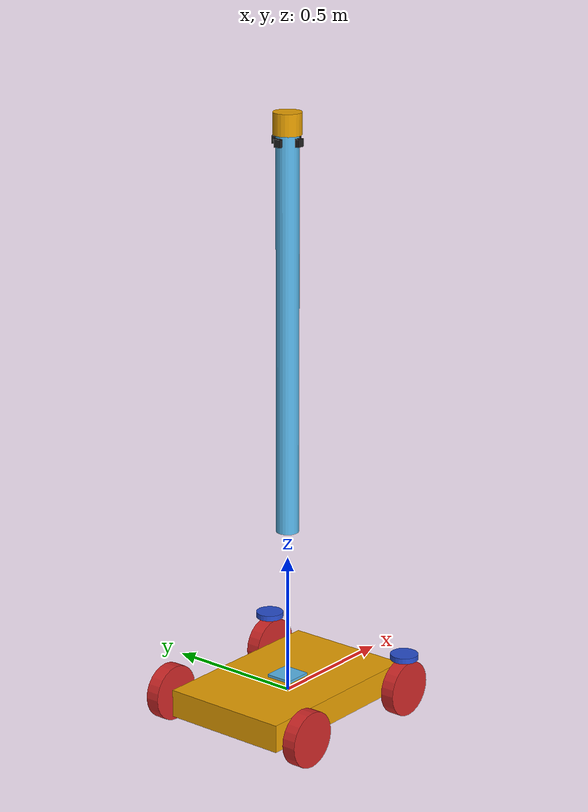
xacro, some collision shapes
<?xml version="1.0"?>
<robot name="mobile_base" xmlns:xacro="http://wiki.ros.org/xacro">
    <!-- Include xacro for inertials, materials and wheels -->
    <xacro:include filename="$(find mobile_base)/urdf/wheel/wheel.xacro" />
    <xacro:include filename="$(find mobile_base)/urdf/hesai_lidar/pandar_XT32M2X.urdf.xacro" />
    <xacro:include filename="$(find mobile_base)/urdf/see3cam/see3cam.urdf.xacro" />

    <!-- Required arg for melodic and kinetic... -->
    <xacro:arg name="namespace" default="/mobile_base" />
    <xacro:property name="namespace" value="$(arg namespace)" scope="global" />

    <!-- Load ros_control plugin using the steer_bot_hardware_gazebo
        implementation of the hardware_interface::RobotHW -->

    <xacro:macro name="box_inertia" params="m w h d">
        <inertial>
            <origin xyz="0 0 0" rpy="${pi/2} 0 ${pi/2}" />
            <mass value="${m}" />
            <inertia ixx="${(m/12) * (h*h + d*d)}" ixy="0.0" ixz="0.0" iyy="${(m/12) * (w*w + d*d)}"
                iyz="0.0" izz="${(m/12) * (w*w + h*h)}" />
        </inertial>
    </xacro:macro>

    <xacro:macro name="cylinder_inertia" params="m r h">
        <inertial>
            <origin xyz="0 0 0" rpy="${pi/2} 0 0" />
            <mass value="${m}" />
            <inertia ixx="${(m/12) * (3*r*r + h*h)}" ixy="0" ixz="0" iyy="${(m/12) * (3*r*r + h*h)}"
                iyz="0" izz="${(m/2) * (r*r)}" />
        </inertial>
    </xacro:macro>

    <xacro:macro name="sphere_inertia" params="m r">
        <inertial>
            <mass value="${m}" />
            <inertia ixx="${(2/5) * m * (r*r)}" ixy="0.0" ixz="0.0" iyy="${(2/5) * m * (r*r)}"
                iyz="0.0" izz="${(2/5) * m * (r*r)}" />
        </inertial>
    </xacro:macro>

    <!-- Math constants -->
    <xacro:property name="deg_to_rad" value="0.01745329251994329577" />

    <!-- Robot base dimensions -->
    <xacro:property name="base_length" value="0.7" />
    <xacro:property name="base_width" value="0.47" />
    <xacro:property name="base_height" value="0.1" />
    <xacro:property name="base_mass" value="5" />

    <!-- Wheel link dimensions -->
    <xacro:property name="wheel_radius" value="0.1" />
    <xacro:property name="wheel_thickness" value="0.05" />
    <xacro:property name="wheel_mass" value="1" />

    <!-- Steering link dimensions -->
    <xacro:property name="steer_radius" value="0.05" />
    <xacro:property name="steer_thickness" value="0.02" />
    <xacro:property name="steer_mass" value="1" />

    <!-- Axle positions -->
    <xacro:property name="axle_offset" value="0.075" />
    <xacro:property name="steer_offset" value="0.02" />

    <!-- Base link -->
    <link name="base_link">
        <visual>
            <origin xyz="-0.275 0 0" rpy="3.14 0 0" />
            <geometry>
                <mesh filename="file:///home/simon/mobile_base_ws/src/mobile_base/urdf/base/meshes/moveo_body.dae" />
            </geometry>
        </visual>
        <collision>
            <origin xyz="0 0 0" rpy="0 0 0" />
            <geometry>
                <box size="${base_length} ${base_width} ${base_height}" />
            </geometry>
        </collision>
        <xacro:solid_cuboid_inertial
            rpy="0 0 0" xyz="0 0 0"
            mass="${base_mass}"
            x="${base_length}" y="${base_width}" z="${base_height}" />
    </link>

    <!-- Base pole -->
    <joint name="base_pole_joint" type="fixed">
        <origin xyz="0 0 1.3" rpy="0 0 0" />
        <parent link="base_link" />
        <child link="base_pole" />
    </joint>

    <link name="base_pole">
        <visual>
            <origin xyz="0.0 0 0" rpy="0.0 0 0" />
            <geometry>
                <cylinder radius="0.04" length="1.4" />
            </geometry>
        </visual>
        <collision>
            <origin xyz="0 0 0" rpy="0 0 0" />
            <geometry>
                <cylinder radius="0.04" length="1.5" />
            </geometry>
        </collision>
    </link>

    <!-- Front steer and rear wheel joints required for ackermann_steering_controller -->

    <!-- Steerable front wheels -->
    <xacro:front_wheel_lr
        name="front_right"
        parent="base"
        reflect="-1"
        wheel_radius="${wheel_radius}"
        wheel_thickness="${wheel_thickness}"
        wheel_mass="${wheel_mass}"
        steer_radius="${steer_radius}"
        steer_thickness="${steer_thickness}"
        steer_mass="${steer_mass}"
        base_length="${base_length}"
        base_width="${base_width}"
        axle_offset="${axle_offset}"
        steer_height="${wheel_radius+steer_offset}">
    </xacro:front_wheel_lr>
    <xacro:front_wheel_lr
        name="front_left"
        parent="base"
        reflect="1"
        wheel_radius="${wheel_radius}"
        wheel_thickness="${wheel_thickness}"
        wheel_mass="${wheel_mass}"
        steer_radius="${steer_radius}"
        steer_thickness="${steer_thickness}"
        steer_mass="${steer_mass}"
        base_length="${base_length}"
        base_width="${base_width}"
        axle_offset="${axle_offset}"
        steer_height="${wheel_radius+steer_offset}">
    </xacro:front_wheel_lr>

    <!-- Rear wheels -->
    <xacro:rear_wheel_lr
        name="rear_right"
        parent="base"
        wheel_radius="${wheel_radius}"
        wheel_thickness="${wheel_thickness}"
        wheel_mass="${wheel_mass}">
        <origin xyz="${-base_length/2+axle_offset} ${-base_width/2-axle_offset} 0"
            rpy="${-90 * deg_to_rad} 0 0" />
    </xacro:rear_wheel_lr>
    <xacro:rear_wheel_lr
        name="rear_left"
        parent="base"
        wheel_radius="${wheel_radius}"
        wheel_thickness="${wheel_thickness}"
        wheel_mass="${wheel_mass}">
        <origin xyz="${-base_length/2+axle_offset} ${+base_width/2+axle_offset} 0"
            rpy="${-90 * deg_to_rad} 0 0" />
    </xacro:rear_wheel_lr>

    <!-- sensors -->

    <!-- Front RGB camera -->
    <xacro:see3cam name="front_camera" parent="base_pole" h_fov="2.0944">
        <origin xyz="0.05 0 0.68"
            rpy="0 0 0" />
    </xacro:see3cam>

    <!-- Rear RGB camera -->
    <xacro:see3cam name="rear_camera" parent="base_pole" h_fov="2.0944">
        <origin xyz="-0.05 0 0.68"
            rpy="0 0 3.14" />
    </xacro:see3cam>

    <!-- Left RGB camera -->
    <xacro:see3cam name="left_camera" parent="base_pole" h_fov="2.0944">
        <origin xyz="0 0.05 0.68"
            rpy="0 0 1.57" />
    </xacro:see3cam>

    <!-- Right RGB camera -->
    <xacro:see3cam name="right_camera" parent="base_pole" h_fov="2.0944">
        <origin xyz="0 -0.05 0.68"
            rpy="0 0 -1.57" />
    </xacro:see3cam>

    <!-- lidar -->
    <xacro:pandar_XT32M2X name="pandar_XT32M2X" parent="base_pole" hz="20" gpu="true">
        <origin xyz="0 0 0.74"
            rpy="0 0 0" />
    </xacro:pandar_XT32M2X>

    <!-- IMU -->
    <link name="imu_link">
        <visual>
            <geometry>
                <box size="0.1 0.1 0.1" />
            </geometry>
        </visual>

        <collision>
            <geometry>
                <box size="0.1 0.1 0.1" />
            </geometry>
        </collision>

        <xacro:box_inertia m="0.001" w="0.1" d="0.1" h="0.1" />
    </link>

    <gazebo reference="imu_link">
        <sensor name="imu_sensor" type="imu">
            <ignition_frame_id>imu_link</ignition_frame_id>
            <plugin filename="ignition-gazebo-imu-system" name="ignition::gazebo::systems::Imu">
            </plugin>

            <topic>imu</topic>
            <always_on>true</always_on>
            <update_rate>100</update_rate>
            <visualize>true</visualize>
            <imu>
                <angular_velocity>
                    <x>
                        <noise type="gaussian">
                            <mean>0.0</mean>
                            <stddev>2e-4</stddev>
                            <bias_mean>0.0000075</bias_mean>
                            <bias_stddev>0.0000008</bias_stddev>
                        </noise>
                    </x>
                    <y>
                        <noise type="gaussian">
                            <mean>0.0</mean>
                            <stddev>2e-4</stddev>
                            <bias_mean>0.0000075</bias_mean>
                            <bias_stddev>0.0000008</bias_stddev>
                        </noise>
                    </y>
                    <z>
                        <noise type="gaussian">
                            <mean>0.0</mean>
                            <stddev>2e-4</stddev>
                            <bias_mean>0.0000075</bias_mean>
                            <bias_stddev>0.0000008</bias_stddev>
                        </noise>
                    </z>
                </angular_velocity>
                <linear_acceleration>
                    <x>
                        <noise type="gaussian">
                            <mean>0.0</mean>
                            <stddev>1.7e-2</stddev>
                            <bias_mean>0.1</bias_mean>
                            <bias_stddev>0.001</bias_stddev>
                        </noise>
                    </x>
                    <y>
                        <noise type="gaussian">
                            <mean>0.0</mean>
                            <stddev>1.7e-2</stddev>
                            <bias_mean>0.1</bias_mean>
                            <bias_stddev>0.001</bias_stddev>
                        </noise>
                    </y>
                    <z>
                        <noise type="gaussian">
                            <mean>0.0</mean>
                            <stddev>1.7e-2</stddev>
                            <bias_mean>0.1</bias_mean>
                            <bias_stddev>0.001</bias_stddev>
                        </noise>
                    </z>
                </linear_acceleration>
            </imu>
        </sensor>
    </gazebo>

    <joint name="imu_joint" type="fixed">
        <parent link="base_link" />
        <child link="imu_link" />
        <origin xyz="0 0 0.01" />
    </joint>

    <!-- controller -->
    <ros2_control name="IgnitionSystem" type="system">
        <hardware>
          <plugin>ign_ros2_control/IgnitionSystem</plugin>
        </hardware>

        <joint name="front_left_steer_joint">
            <command_interface name="position"/>
            <state_interface name="position"/>

        </joint>

        <joint name="front_right_steer_joint">
            <command_interface name="position"/>
            <state_interface name="position"/>

        </joint>

        <joint name="rear_left_wheel_joint">
            <command_interface name="velocity"/>
            <state_interface name="position"/>
            <state_interface name="velocity"/>
        </joint>

        <joint name="rear_right_wheel_joint">
            <command_interface name="velocity"/>
            <state_interface name="position"/>
            <state_interface name="velocity"/>
        </joint>

        <joint name="front_left_wheel_joint">
            <state_interface name="position"/>
            <state_interface name="velocity"/>
        </joint>

        <joint name="front_right_wheel_joint">
            <state_interface name="position"/>
            <state_interface name="velocity"/>
        </joint>
      </ros2_control>

      <gazebo>
        <plugin filename="ign_ros2_control-system" name="ign_ros2_control::IgnitionROS2ControlPlugin">
          <parameters>$(find mobile_base)/config/ackermann_steering_controller.yaml</parameters>
        </plugin>
      </gazebo>
</robot>

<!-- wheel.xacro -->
<robot name="wheel" xmlns:xacro="http://wiki.ros.org/xacro">
  <!-- Include xacro for materials and inertials -->
  <xacro:include filename="$(find mobile_base)/urdf/wheel/materials.xacro"/>
  <xacro:include filename="$(find mobile_base)/urdf/wheel/inertials.xacro"/>

  <!-- Properties -->
  <xacro:property name="steer_effort" value="10.0"/>
  <xacro:property name="steer_velocity" value="5.0"/>
  <xacro:property name="steer_limit_deg" value="45.0"/>

  <!-- Car steering model front (steerable) wheel links (left/right) -->
  <xacro:macro name="front_wheel_lr"
    params="
      name
      parent
      reflect
      wheel_radius
      wheel_thickness
      wheel_mass
      steer_radius
      steer_thickness
      steer_mass
      base_length
      base_width
      axle_offset
      steer_height">
    <link name="${name}_steer_link">
      <visual>
        <origin xyz="0 0 0" rpy="0 0 0"/>
        <geometry>
          <cylinder radius="${steer_radius}" length="${steer_thickness}"/>
        </geometry>
        <material name="blue" />
      </visual>
      <collision>
        <origin xyz="0 0 0" rpy="0 0 0"/>
        <geometry>
          <cylinder radius="${steer_radius}" length="${steer_thickness}"/>
        </geometry>
      </collision>
      <xacro:solid_cylinder_inertial
          rpy="0 0 0" xyz="0 0 0"
          mass="${steer_mass}"
          radius="${steer_radius}" length="${steer_thickness}" />
    </link>

    <joint name="${name}_steer_joint" type="revolute">
      <parent link="${parent}_link"/>
      <child link="${name}_steer_link"/>
      <origin xyz="${base_length/2-axle_offset} ${reflect*(base_width/2+axle_offset)} ${steer_height}" rpy="0 0 0"/>
      <axis xyz="0 0 1"/>
      <limit effort="${steer_effort}"
             lower="${steer_limit_deg * deg_to_rad * -1.0}" upper="${steer_limit_deg * deg_to_rad}"
             velocity="${steer_velocity}"/>
    </joint>

    <link name="${name}_wheel_link">
      <visual>
        <origin xyz="0 0 0" rpy="0 0 0"/>
        <geometry>
          <cylinder radius="${wheel_radius}" length="${wheel_thickness}"/>
        </geometry>
        <material name="red" />
      </visual>
      <collision>
        <origin xyz="0 0 0" rpy="0 0 0"/>
        <geometry>
          <cylinder radius="${wheel_radius}" length="${wheel_thickness}"/>
        </geometry>
      </collision>
      <xacro:solid_cylinder_inertial
          rpy="0 0 0" xyz="0 0 0"
          mass="${wheel_mass}"
          radius="${wheel_radius}" length="${wheel_thickness}" />
    </link>

    <joint name="${name}_wheel_joint" type="continuous">
      <parent link="${name}_steer_link"/>
      <child link="${name}_wheel_link"/>
      <origin xyz="0 0 ${-steer_height}" rpy="${-90 * deg_to_rad} 0 0"/>
      <axis xyz="0 0 1"/>
    </joint>

    <gazebo reference="${name}_steer_link">
      <material>Gazebo/Blue</material>
    </gazebo>

    <gazebo reference="${name}_wheel_link">
      <material>Gazebo/Red</material>
    </gazebo>
  </xacro:macro>

  <!-- Bicycle model rear wheel link (required for steer_drive_controller) -->
  <xacro:macro name="rear_wheel"
    params="
      name
      parent
      wheel_radius
      wheel_thickness
      wheel_mass
      *origin">
    <link name="${name}_wheel_link">
      <visual>
        <origin xyz="0 0 0" rpy="0 0 0"/>
        <geometry>
          <cylinder radius="${wheel_radius}" length="${wheel_thickness}"/>
        </geometry>
        <material name="yellow" />
      </visual>
      <collision>
        <origin xyz="0 0 0" rpy="0 0 0"/>
        <geometry>
          <cylinder radius="${wheel_radius}" length="${wheel_thickness}"/>
        </geometry>
      </collision>
      <xacro:solid_cylinder_inertial
          rpy="0 0 0" xyz="0 0 0"
          mass="${wheel_mass}"
          radius="${wheel_radius}" length="${wheel_thickness}" />
    </link>

    <joint name="${name}_wheel_joint" type="continuous">
      <parent link="${parent}_link"/>
      <child link="${name}_wheel_link"/>
      <xacro:insert_block name="origin"/>
      <axis xyz="0 0 1"/>
    </joint>

    <gazebo reference="${name}_wheel_link">
      <material>Gazebo/Yellow</material>
    </gazebo>
  </xacro:macro>

  <!-- Car steering model rear wheel links (left/right) -->
  <xacro:macro name="rear_wheel_lr"
    params="
      name
      parent
      wheel_radius
      wheel_thickness
      wheel_mass
      *origin">
    <link name="${name}_wheel_link">
      <visual>
        <origin xyz="0 0 0" rpy="0 0 0"/>
        <geometry>
          <cylinder radius="${wheel_radius}" length="${wheel_thickness}"/>
        </geometry>
        <material name="red" />
      </visual>
      <collision>
        <origin xyz="0 0 0" rpy="0 0 0"/>
        <geometry>
          <cylinder radius="${wheel_radius}" length="${wheel_thickness}"/>
        </geometry>
      </collision>
      <xacro:solid_cylinder_inertial
          rpy="0 0 0" xyz="0 0 0"
          mass="${wheel_mass}"
          radius="${wheel_radius}" length="${wheel_thickness}" />
    </link>

    <joint name="${name}_wheel_joint" type="continuous">
      <parent link="${parent}_link"/>
      <child link="${name}_wheel_link"/>
      <xacro:insert_block name="origin"/>
      <axis xyz="0 0 1"/>
    </joint>

    <gazebo reference="${name}_wheel_link">
      <material>Gazebo/Red</material>
    </gazebo>
  </xacro:macro>
</robot>

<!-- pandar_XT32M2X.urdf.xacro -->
<robot xmlns:xacro="http://www.ros.org/wiki/xacro">
    <xacro:include filename="$(find mobile_base)/urdf/hesai_lidar/lidar.gazebo.xacro" />
    <xacro:property name="M_PI" value="3.1415926535897931" />
    <xacro:macro name="pandar_XT32M2X" params="*origin parent:=base_link name:=pandar topic_points:=/pandar/points hz:=10 gpu:=true">

    <joint name="${name}_frame_joint" type="fixed">
        <xacro:insert_block name="origin" />
        <parent link="${parent}"/>
        <child link="${name}_link"/>
    </joint>

    <link name="${name}_link">
        <inertial>
            <mass value="0.49"/>
            <origin xyz="0 0 0.0365" rpy="0 0 0" />
            <inertia ixx="0.000241148" ixy="0" ixz="0" iyy="0.000241148" iyz="0" izz="0.000264"/>
        </inertial>
        <collision name="base_collision">
            <origin xyz="0 0 0" rpy="0 0 0" />
            <geometry>
                <cylinder radius="0.05" length="0.076"/>
            </geometry>
        </collision>
        <visual name="base_visual">
            <origin xyz="0 0 0.0" rpy="0 0 0" />
            <geometry>
                <cylinder radius="0.05" length="0.076"/>
            </geometry>
        </visual>
    </link>

    <xacro:if value="${hz == 5}">
    <xacro:property name="samples" value="4000" />
    </xacro:if>
    <xacro:if value="${hz == 10}">
    <xacro:property name="samples" value="2000" />
    </xacro:if>
    <xacro:if value="${hz == 20}">
    <xacro:property name="samples" value="1000" />
    </xacro:if>

    <xacro:gazebo_lidar name="${name}" topic_points="${topic_points}" hz="${hz}" lasers="32" samples="${samples}"
                      min_range="0.5" max_range="150" noise="0.01" min_angle="-${M_PI}"
                      max_angle="${M_PI}" vfov_min="-0.349066" vfov_max="0.331613" gpu="${gpu}"/>

    </xacro:macro>
</robot>

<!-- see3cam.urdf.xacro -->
<robot xmlns:xacro="http://www.ros.org/wiki/xacro">
    <xacro:include filename="$(find mobile_base)/urdf/see3cam/camera.gazebo.xacro" />
    <xacro:macro name="see3cam" params="*origin parent name hz:=15.0 h_fov:=2.61799 format:=R8G8B8">

    <!-- Camera -->
    <joint name="${name}_frame_joint" type="fixed">
        <xacro:insert_block name="origin" />
        <parent link="${parent}"/>
        <child link="${name}_link" />
    </joint>
    <link name="${name}_link">
        <inertial>
            <mass value="0.05" />
                <inertia ixx="0.0"  ixy="0.0"  ixz="0.0"
                         iyy="0.0"  iyz="0.0"  izz="0.0" />
        </inertial>
        <visual>
            <origin xyz="0 0 0.0" rpy="0 0 0" />
            <geometry>
                <box size="0.0145 0.027 0.027"/>
            </geometry>
        </visual>
        <collision>
            <origin xyz="0 0 0" rpy="0 0 0" />
            <geometry>
                <box size="0.0145 0.027 0.027"/>
            </geometry>
        </collision>
    </link>

    <gazebo reference="${name}_link">
        <material>Gazebo/FlatBlack</material>
    </gazebo>

    <joint name="${name}_optical_frame_joint" type="fixed">
        <origin xyz="0.0 0 0" rpy="0 0 0"/>
        <parent link="${name}_link"/>
        <child link="${name}_optical_link"/>
    </joint>
    <link name="${name}_optical_link"/>

    <!-- extension -->
    <xacro:gazebo_camera name="${name}_image" reference="${name}_optical_link" hz="${hz}" h_fov="${h_fov}" width="1920" height="1080" format="${format}" frame_id="${name}_link"/>
    </xacro:macro>
</robot>
